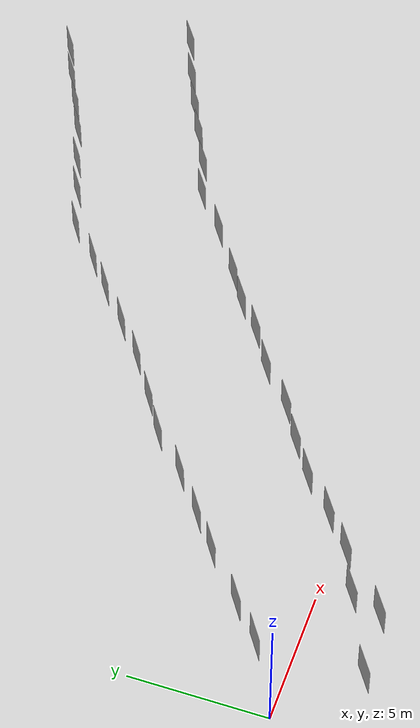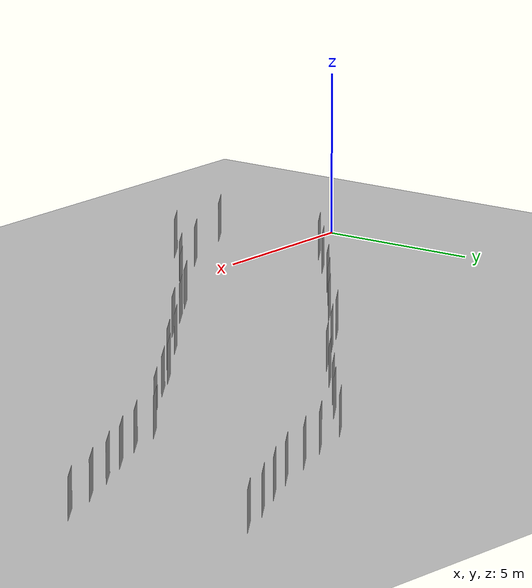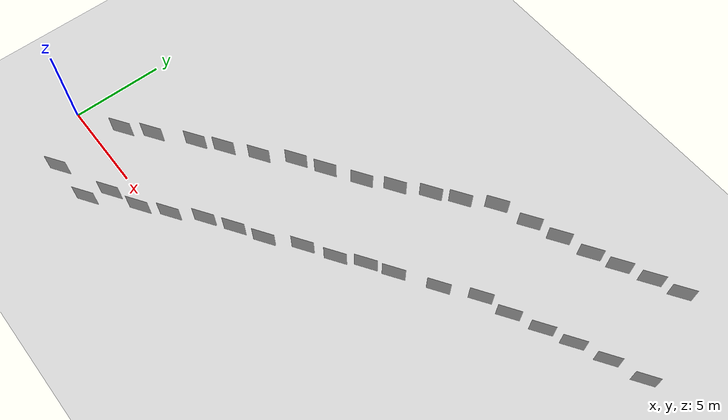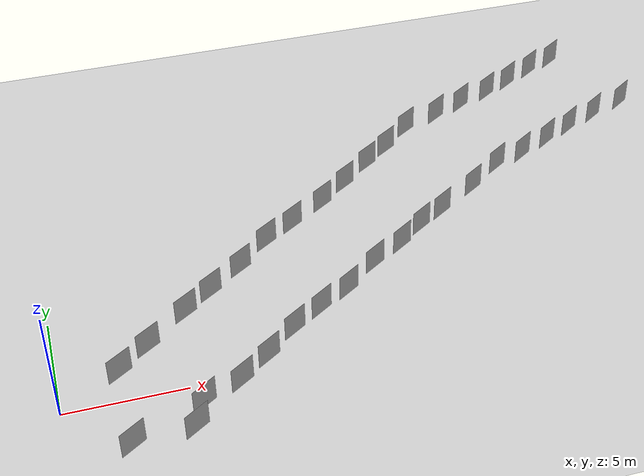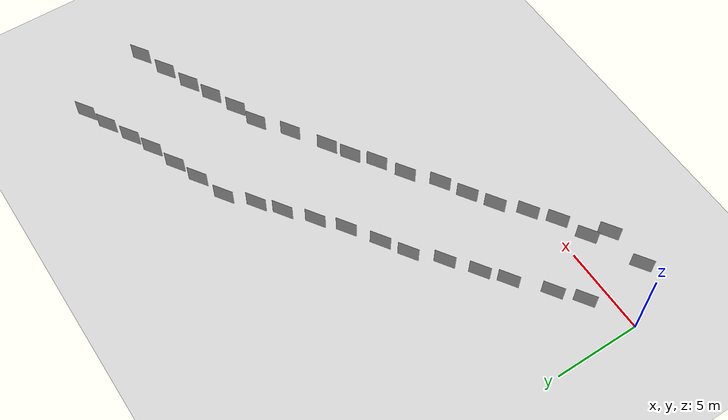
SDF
<sdf version="1.6">
 <world name="default">
  <light name="sun" type="directional">
   <pose>0 0 10 0 -0 0</pose>
   <diffuse>0.8 0.8 0.8 1</diffuse>
   <specular>0.1 0.1 0.1 1</specular>
   <attenuation>
    <range>1000</range>
    <constant>0.9</constant>
    <linear>0.01</linear>
    <quadratic>0.001</quadratic>
   </attenuation>
   <direction>-0.5 0.5 -1</direction>
  </light>
  <model name="ground_plane">
   <static>1</static>
   <link name="link">
    <collision name="collision">
     <geometry><plane><normal>0 0 1</normal><size>100 100</size></plane></geometry>
     <surface><friction><ode><mu>100</mu><mu2>50</mu2></ode></friction></surface>
    </collision>
    <visual name="visual">
     <cast_shadows>0</cast_shadows>
     <geometry><plane><normal>0 0 1</normal><size>100 100</size></plane></geometry>
     <material>
      <script><uri>file://media/materials/scripts/gazebo.material</uri><name>Gazebo/Grey</name></script>
     </material>
    </visual>
   </link>
  </model>
  <gravity>0 0 -9.8</gravity>
  <magnetic_field>6e-06 2.3e-05 -4.2e-05</magnetic_field>
  <atmosphere type="adiabatic"/>
  <physics name="default_physics" default="0" type="ode">
   <max_step_size>0.001</max_step_size>
   <real_time_factor>1</real_time_factor>
   <real_time_update_rate>1000</real_time_update_rate>
  </physics>
  <scene><ambient>0.4 0.4 0.4 1</ambient><background>0.7 0.7 0.7 1</background><shadows>1</shadows></scene>
  <spherical_coordinates>
   <surface_model>EARTH_WGS84</surface_model>
   <latitude_deg>0</latitude_deg>
   <longitude_deg>0</longitude_deg>
   <elevation>0</elevation>
   <heading_deg>0</heading_deg>
  </spherical_coordinates>
  <model name="nist_maze_wall_120">
   <static>1</static>
   <link name="nist_maze_wall_120_link">
    <collision name="collision">
     <geometry>
      <mesh><uri>model://nist_maze_wall_120/meshes/nist_maze_wall_120.dae</uri><scale>1 1 1</scale></mesh>
     </geometry>
    </collision>
    <visual name="visual">
     <geometry>
      <mesh><uri>model://nist_maze_wall_120/meshes/nist_maze_wall_120.dae</uri><scale>1 1 1</scale></mesh>
     </geometry>
    </visual>
   </link>
   <pose>2.80537 -2.9392 0 0 -0 0.587131</pose>
  </model>
  <model name="nist_maze_wall_120_clone">
   <static>1</static>
   <link name="nist_maze_wall_120_link">
    <collision name="collision">
     <geometry>
      <mesh><uri>model://nist_maze_wall_120/meshes/nist_maze_wall_120.dae</uri><scale>1 1 1</scale></mesh>
     </geometry>
    </collision>
    <visual name="visual">
     <geometry>
      <mesh><uri>model://nist_maze_wall_120/meshes/nist_maze_wall_120.dae</uri><scale>1 1 1</scale></mesh>
     </geometry>
    </visual>
   </link>
   <pose>5.24252 -2.7469 0 0 -0 0.587131</pose>
  </model>
  <model name="nist_maze_wall_120_clone_0">
   <static>1</static>
   <link name="nist_maze_wall_120_link">
    <collision name="collision">
     <geometry>
      <mesh><uri>model://nist_maze_wall_120/meshes/nist_maze_wall_120.dae</uri><scale>1 1 1</scale></mesh>
     </geometry>
    </collision>
    <visual name="visual">
     <geometry>
      <mesh><uri>model://nist_maze_wall_120/meshes/nist_maze_wall_120.dae</uri><scale>1 1 1</scale></mesh>
     </geometry>
    </visual>
   </link>
   <pose>5.72932 -1.6127 0 0 -0 0.587131</pose>
  </model>
  <model name="nist_maze_wall_120_clone_1">
   <static>1</static>
   <link name="nist_maze_wall_120_link">
    <collision name="collision">
     <geometry>
      <mesh><uri>model://nist_maze_wall_120/meshes/nist_maze_wall_120.dae</uri><scale>1 1 1</scale></mesh>
     </geometry>
    </collision>
    <visual name="visual">
     <geometry>
      <mesh><uri>model://nist_maze_wall_120/meshes/nist_maze_wall_120.dae</uri><scale>1 1 1</scale></mesh>
     </geometry>
    </visual>
   </link>
   <pose>7.36031 -0.90932 0 0 -0 0.587131</pose>
  </model>
  <model name="nist_maze_wall_120_clone_2">
   <static>1</static>
   <link name="nist_maze_wall_120_link">
    <collision name="collision">
     <geometry>
      <mesh><uri>model://nist_maze_wall_120/meshes/nist_maze_wall_120.dae</uri><scale>1 1 1</scale></mesh>
     </geometry>
    </collision>
    <visual name="visual">
     <geometry>
      <mesh><uri>model://nist_maze_wall_120/meshes/nist_maze_wall_120.dae</uri><scale>1 1 1</scale></mesh>
     </geometry>
    </visual>
   </link>
   <pose>8.6524 0.106018 0 0 -0 0.587131</pose>
  </model>
  <model name="nist_maze_wall_120_clone_3">
   <static>1</static>
   <link name="nist_maze_wall_120_link">
    <collision name="collision">
     <geometry>
      <mesh><uri>model://nist_maze_wall_120/meshes/nist_maze_wall_120.dae</uri><scale>1 1 1</scale></mesh>
     </geometry>
    </collision>
    <visual name="visual">
     <geometry>
      <mesh><uri>model://nist_maze_wall_120/meshes/nist_maze_wall_120.dae</uri><scale>1 1 1</scale></mesh>
     </geometry>
    </visual>
   </link>
   <pose>9.99961 1.31472 0 0 -0 0.587131</pose>
  </model>
  <model name="nist_maze_wall_120_clone_4">
   <static>1</static>
   <link name="nist_maze_wall_120_link">
    <collision name="collision">
     <geometry>
      <mesh><uri>model://nist_maze_wall_120/meshes/nist_maze_wall_120.dae</uri><scale>1 1 1</scale></mesh>
     </geometry>
    </collision>
    <visual name="visual">
     <geometry>
      <mesh><uri>model://nist_maze_wall_120/meshes/nist_maze_wall_120.dae</uri><scale>1 1 1</scale></mesh>
     </geometry>
    </visual>
   </link>
   <pose>11.347 2.19095 0 0 -0 0.587131</pose>
  </model>
  <model name="nist_maze_wall_120_clone_5">
   <static>1</static>
   <link name="nist_maze_wall_120_link">
    <collision name="collision">
     <geometry>
      <mesh><uri>model://nist_maze_wall_120/meshes/nist_maze_wall_120.dae</uri><scale>1 1 1</scale></mesh>
     </geometry>
    </collision>
    <visual name="visual">
     <geometry>
      <mesh><uri>model://nist_maze_wall_120/meshes/nist_maze_wall_120.dae</uri><scale>1 1 1</scale></mesh>
     </geometry>
    </visual>
   </link>
   <pose>12.7499 3.00274 0 0 -0 0.587131</pose>
  </model>
  <model name="nist_maze_wall_120_clone_6">
   <static>1</static>
   <link name="nist_maze_wall_120_link">
    <collision name="collision">
     <geometry>
      <mesh><uri>model://nist_maze_wall_120/meshes/nist_maze_wall_120.dae</uri><scale>1 1 1</scale></mesh>
     </geometry>
    </collision>
    <visual name="visual">
     <geometry>
      <mesh><uri>model://nist_maze_wall_120/meshes/nist_maze_wall_120.dae</uri><scale>1 1 1</scale></mesh>
     </geometry>
    </visual>
   </link>
   <pose>14.276 4.27203 0 0 -0 0.587131</pose>
  </model>
  <model name="nist_maze_wall_120_clone_7">
   <static>1</static>
   <link name="nist_maze_wall_120_link">
    <collision name="collision">
     <geometry>
      <mesh><uri>model://nist_maze_wall_120/meshes/nist_maze_wall_120.dae</uri><scale>1 1 1</scale></mesh>
     </geometry>
    </collision>
    <visual name="visual">
     <geometry>
      <mesh><uri>model://nist_maze_wall_120/meshes/nist_maze_wall_120.dae</uri><scale>1 1 1</scale></mesh>
     </geometry>
    </visual>
   </link>
   <pose>2.8216 0.871889 0 0 -0 0.587131</pose>
  </model>
  <model name="nist_maze_wall_120_clone_8">
   <static>1</static>
   <link name="nist_maze_wall_120_link">
    <collision name="collision">
     <geometry>
      <mesh><uri>model://nist_maze_wall_120/meshes/nist_maze_wall_120.dae</uri><scale>1 1 1</scale></mesh>
     </geometry>
    </collision>
    <visual name="visual">
     <geometry>
      <mesh><uri>model://nist_maze_wall_120/meshes/nist_maze_wall_120.dae</uri><scale>1 1 1</scale></mesh>
     </geometry>
    </visual>
   </link>
   <pose>4.11145 1.97306 0 0 -0 0.587131</pose>
  </model>
  <model name="nist_maze_wall_120_clone_9">
   <static>1</static>
   <link name="nist_maze_wall_120_link">
    <collision name="collision">
     <geometry>
      <mesh><uri>model://nist_maze_wall_120/meshes/nist_maze_wall_120.dae</uri><scale>1 1 1</scale></mesh>
     </geometry>
    </collision>
    <visual name="visual">
     <geometry>
      <mesh><uri>model://nist_maze_wall_120/meshes/nist_maze_wall_120.dae</uri><scale>1 1 1</scale></mesh>
     </geometry>
    </visual>
   </link>
   <pose>5.90118 3.48705 0 0 -0 0.587131</pose>
  </model>
  <model name="nist_maze_wall_120_clone_10">
   <static>1</static>
   <link name="nist_maze_wall_120_link">
    <collision name="collision">
     <geometry>
      <mesh><uri>model://nist_maze_wall_120/meshes/nist_maze_wall_120.dae</uri><scale>1 1 1</scale></mesh>
     </geometry>
    </collision>
    <visual name="visual">
     <geometry>
      <mesh><uri>model://nist_maze_wall_120/meshes/nist_maze_wall_120.dae</uri><scale>1 1 1</scale></mesh>
     </geometry>
    </visual>
   </link>
   <pose>7.1362 4.44564 0 0 -0 0.587131</pose>
  </model>
  <model name="nist_maze_wall_120_clone_11">
   <static>1</static>
   <link name="nist_maze_wall_120_link">
    <collision name="collision">
     <geometry>
      <mesh><uri>model://nist_maze_wall_120/meshes/nist_maze_wall_120.dae</uri><scale>1 1 1</scale></mesh>
     </geometry>
    </collision>
    <visual name="visual">
     <geometry>
      <mesh><uri>model://nist_maze_wall_120/meshes/nist_maze_wall_120.dae</uri><scale>1 1 1</scale></mesh>
     </geometry>
    </visual>
   </link>
   <pose>8.6582 5.60676 0 0 -0 0.587131</pose>
  </model>
  <model name="nist_maze_wall_120_clone_12">
   <static>1</static>
   <link name="nist_maze_wall_120_link">
    <collision name="collision">
     <geometry>
      <mesh><uri>model://nist_maze_wall_120/meshes/nist_maze_wall_120.dae</uri><scale>1 1 1</scale></mesh>
     </geometry>
    </collision>
    <visual name="visual">
     <geometry>
      <mesh><uri>model://nist_maze_wall_120/meshes/nist_maze_wall_120.dae</uri><scale>1 1 1</scale></mesh>
     </geometry>
    </visual>
   </link>
   <pose>10.0923 6.95221 0 0 -0 0.587131</pose>
  </model>
  <model name="nist_maze_wall_120_clone_13">
   <static>1</static>
   <link name="nist_maze_wall_120_link">
    <collision name="collision">
     <geometry>
      <mesh><uri>model://nist_maze_wall_120/meshes/nist_maze_wall_120.dae</uri><scale>1 1 1</scale></mesh>
     </geometry>
    </collision>
    <visual name="visual">
     <geometry>
      <mesh><uri>model://nist_maze_wall_120/meshes/nist_maze_wall_120.dae</uri><scale>1 1 1</scale></mesh>
     </geometry>
    </visual>
   </link>
   <pose>11.4725 7.80155 0 0 -0 0.587131</pose>
  </model>
  <model name="nist_maze_wall_120_clone_14">
   <static>1</static>
   <link name="nist_maze_wall_120_link">
    <collision name="collision">
     <geometry>
      <mesh><uri>model://nist_maze_wall_120/meshes/nist_maze_wall_120.dae</uri><scale>1 1 1</scale></mesh>
     </geometry>
    </collision>
    <visual name="visual">
     <geometry>
      <mesh><uri>model://nist_maze_wall_120/meshes/nist_maze_wall_120.dae</uri><scale>1 1 1</scale></mesh>
     </geometry>
    </visual>
   </link>
   <pose>13.1389 8.88084 0 0 -0 0.587131</pose>
  </model>
  <model name="nist_maze_wall_120_clone_15">
   <static>1</static>
   <link name="nist_maze_wall_120_link">
    <collision name="collision">
     <geometry>
      <mesh><uri>model://nist_maze_wall_120/meshes/nist_maze_wall_120.dae</uri><scale>1 1 1</scale></mesh>
     </geometry>
    </collision>
    <visual name="visual">
     <geometry>
      <mesh><uri>model://nist_maze_wall_120/meshes/nist_maze_wall_120.dae</uri><scale>1 1 1</scale></mesh>
     </geometry>
    </visual>
   </link>
   <pose>14.4968 9.98221 0 0 -0 0.587131</pose>
  </model>
  <model name="nist_maze_wall_120_clone_16">
   <static>1</static>
   <link name="nist_maze_wall_120_link">
    <collision name="collision">
     <geometry>
      <mesh><uri>model://nist_maze_wall_120/meshes/nist_maze_wall_120.dae</uri><scale>1 1 1</scale></mesh>
     </geometry>
    </collision>
    <visual name="visual">
     <geometry>
      <mesh><uri>model://nist_maze_wall_120/meshes/nist_maze_wall_120.dae</uri><scale>1 1 1</scale></mesh>
     </geometry>
    </visual>
   </link>
   <pose>15.9233 11.169 0 0 -0 0.587131</pose>
  </model>
  <model name="nist_maze_wall_120_clone_17">
   <static>1</static>
   <link name="nist_maze_wall_120_link">
    <collision name="collision">
     <geometry>
      <mesh><uri>model://nist_maze_wall_120/meshes/nist_maze_wall_120.dae</uri><scale>1 1 1</scale></mesh>
     </geometry>
    </collision>
    <visual name="visual">
     <geometry>
      <mesh><uri>model://nist_maze_wall_120/meshes/nist_maze_wall_120.dae</uri><scale>1 1 1</scale></mesh>
     </geometry>
    </visual>
   </link>
   <pose>17.1281 12.1095 0 0 -0 0.587131</pose>
  </model>
  <model name="nist_maze_wall_120_clone_18">
   <static>1</static>
   <link name="nist_maze_wall_120_link">
    <collision name="collision">
     <geometry>
      <mesh><uri>model://nist_maze_wall_120/meshes/nist_maze_wall_120.dae</uri><scale>1 1 1</scale></mesh>
     </geometry>
    </collision>
    <visual name="visual">
     <geometry>
      <mesh><uri>model://nist_maze_wall_120/meshes/nist_maze_wall_120.dae</uri><scale>1 1 1</scale></mesh>
     </geometry>
    </visual>
   </link>
   <pose>18.5139 13.3457 0 0 -0 0.587131</pose>
  </model>
  <model name="nist_maze_wall_120_clone_19">
   <static>1</static>
   <link name="nist_maze_wall_120_link">
    <collision name="collision">
     <geometry>
      <mesh><uri>model://nist_maze_wall_120/meshes/nist_maze_wall_120.dae</uri><scale>1 1 1</scale></mesh>
     </geometry>
    </collision>
    <visual name="visual">
     <geometry>
      <mesh><uri>model://nist_maze_wall_120/meshes/nist_maze_wall_120.dae</uri><scale>1 1 1</scale></mesh>
     </geometry>
    </visual>
   </link>
   <pose>15.7593 5.16058 0 0 -0 0.587131</pose>
  </model>
  <model name="nist_maze_wall_120_clone_20">
   <static>1</static>
   <link name="nist_maze_wall_120_link">
    <collision name="collision">
     <geometry>
      <mesh><uri>model://nist_maze_wall_120/meshes/nist_maze_wall_120.dae</uri><scale>1 1 1</scale></mesh>
     </geometry>
    </collision>
    <visual name="visual">
     <geometry>
      <mesh><uri>model://nist_maze_wall_120/meshes/nist_maze_wall_120.dae</uri><scale>1 1 1</scale></mesh>
     </geometry>
    </visual>
   </link>
   <pose>16.97 6.12544 0 0 -0 0.587131</pose>
  </model>
  <model name="nist_maze_wall_120_clone_21">
   <static>1</static>
   <link name="nist_maze_wall_120_link">
    <collision name="collision">
     <geometry>
      <mesh><uri>model://nist_maze_wall_120/meshes/nist_maze_wall_120.dae</uri><scale>1 1 1</scale></mesh>
     </geometry>
    </collision>
    <visual name="visual">
     <geometry>
      <mesh><uri>model://nist_maze_wall_120/meshes/nist_maze_wall_120.dae</uri><scale>1 1 1</scale></mesh>
     </geometry>
    </visual>
   </link>
   <pose>18.1995 6.87545 0 0 -0 0.587131</pose>
  </model>
  <model name="nist_maze_wall_120_clone_22">
   <static>1</static>
   <link name="nist_maze_wall_120_link">
    <collision name="collision">
     <geometry>
      <mesh><uri>model://nist_maze_wall_120/meshes/nist_maze_wall_120.dae</uri><scale>1 1 1</scale></mesh>
     </geometry>
    </collision>
    <visual name="visual">
     <geometry>
      <mesh><uri>model://nist_maze_wall_120/meshes/nist_maze_wall_120.dae</uri><scale>1 1 1</scale></mesh>
     </geometry>
    </visual>
   </link>
   <pose>20.1158 8.10637 0 0 -0 0.587131</pose>
  </model>
  <model name="nist_maze_wall_120_clone_23">
   <static>1</static>
   <link name="nist_maze_wall_120_link">
    <collision name="collision">
     <geometry>
      <mesh><uri>model://nist_maze_wall_120/meshes/nist_maze_wall_120.dae</uri><scale>1 1 1</scale></mesh>
     </geometry>
    </collision>
    <visual name="visual">
     <geometry>
      <mesh><uri>model://nist_maze_wall_120/meshes/nist_maze_wall_120.dae</uri><scale>1 1 1</scale></mesh>
     </geometry>
    </visual>
   </link>
   <pose>20.2723 13.9693 0 0 -0 0.587131</pose>
  </model>
  <model name="nist_maze_wall_120_clone_24">
   <static>1</static>
   <link name="nist_maze_wall_120_link">
    <collision name="collision">
     <geometry>
      <mesh><uri>model://nist_maze_wall_120/meshes/nist_maze_wall_120.dae</uri><scale>1 1 1</scale></mesh>
     </geometry>
    </collision>
    <visual name="visual">
     <geometry>
      <mesh><uri>model://nist_maze_wall_120/meshes/nist_maze_wall_120.dae</uri><scale>1 1 1</scale></mesh>
     </geometry>
    </visual>
   </link>
   <pose>21.7841 14.561 0 0 -0 0.587131</pose>
  </model>
  <model name="nist_maze_wall_120_clone_25">
   <static>1</static>
   <link name="nist_maze_wall_120_link">
    <collision name="collision">
     <geometry>
      <mesh><uri>model://nist_maze_wall_120/meshes/nist_maze_wall_120.dae</uri><scale>1 1 1</scale></mesh>
     </geometry>
    </collision>
    <visual name="visual">
     <geometry>
      <mesh><uri>model://nist_maze_wall_120/meshes/nist_maze_wall_120.dae</uri><scale>1 1 1</scale></mesh>
     </geometry>
    </visual>
   </link>
   <pose>23.3777 15.1428 0 0 -0 0.587131</pose>
  </model>
  <model name="nist_maze_wall_120_clone_26">
   <static>1</static>
   <link name="nist_maze_wall_120_link">
    <collision name="collision">
     <geometry>
      <mesh><uri>model://nist_maze_wall_120/meshes/nist_maze_wall_120.dae</uri><scale>1 1 1</scale></mesh>
     </geometry>
    </collision>
    <visual name="visual">
     <geometry>
      <mesh><uri>model://nist_maze_wall_120/meshes/nist_maze_wall_120.dae</uri><scale>1 1 1</scale></mesh>
     </geometry>
    </visual>
   </link>
   <pose>24.7474 15.7781 0 0 -0 0.587131</pose>
  </model>
  <model name="nist_maze_wall_120_clone_27">
   <static>1</static>
   <link name="nist_maze_wall_120_link">
    <collision name="collision">
     <geometry>
      <mesh><uri>model://nist_maze_wall_120/meshes/nist_maze_wall_120.dae</uri><scale>1 1 1</scale></mesh>
     </geometry>
    </collision>
    <visual name="visual">
     <geometry>
      <mesh><uri>model://nist_maze_wall_120/meshes/nist_maze_wall_120.dae</uri><scale>1 1 1</scale></mesh>
     </geometry>
    </visual>
   </link>
   <pose>26.2046 16.497 0 0 -0 0.587131</pose>
  </model>
  <model name="nist_maze_wall_120_clone_28">
   <static>1</static>
   <link name="nist_maze_wall_120_link">
    <collision name="collision">
     <geometry>
      <mesh><uri>model://nist_maze_wall_120/meshes/nist_maze_wall_120.dae</uri><scale>1 1 1</scale></mesh>
     </geometry>
    </collision>
    <visual name="visual">
     <geometry>
      <mesh><uri>model://nist_maze_wall_120/meshes/nist_maze_wall_120.dae</uri><scale>1 1 1</scale></mesh>
     </geometry>
    </visual>
   </link>
   <pose>27.6211 17.1018 0 0 -0 0.587131</pose>
  </model>
  <model name="nist_maze_wall_120_clone_29">
   <static>1</static>
   <link name="nist_maze_wall_120_link">
    <collision name="collision">
     <geometry>
      <mesh><uri>model://nist_maze_wall_120/meshes/nist_maze_wall_120.dae</uri><scale>1 1 1</scale></mesh>
     </geometry>
    </collision>
    <visual name="visual">
     <geometry>
      <mesh><uri>model://nist_maze_wall_120/meshes/nist_maze_wall_120.dae</uri><scale>1 1 1</scale></mesh>
     </geometry>
    </visual>
   </link>
   <pose>21.7663 9.36882 0 0 -0 0.587131</pose>
  </model>
  <model name="nist_maze_wall_120_clone_30">
   <static>1</static>
   <link name="nist_maze_wall_120_link">
    <collision name="collision">
     <geometry>
      <mesh><uri>model://nist_maze_wall_120/meshes/nist_maze_wall_120.dae</uri><scale>1 1 1</scale></mesh>
     </geometry>
    </collision>
    <visual name="visual">
     <geometry>
      <mesh><uri>model://nist_maze_wall_120/meshes/nist_maze_wall_120.dae</uri><scale>1 1 1</scale></mesh>
     </geometry>
    </visual>
   </link>
   <pose>23.2327 9.84201 0 0 -0 0.587131</pose>
  </model>
  <model name="nist_maze_wall_120_clone_31">
   <static>1</static>
   <link name="nist_maze_wall_120_link">
    <collision name="collision">
     <geometry>
      <mesh><uri>model://nist_maze_wall_120/meshes/nist_maze_wall_120.dae</uri><scale>1 1 1</scale></mesh>
     </geometry>
    </collision>
    <visual name="visual">
     <geometry>
      <mesh><uri>model://nist_maze_wall_120/meshes/nist_maze_wall_120.dae</uri><scale>1 1 1</scale></mesh>
     </geometry>
    </visual>
   </link>
   <pose>24.7825 10.5613 0 0 -0 0.587131</pose>
  </model>
  <model name="nist_maze_wall_120_clone_32">
   <static>1</static>
   <link name="nist_maze_wall_120_link">
    <collision name="collision">
     <geometry>
      <mesh><uri>model://nist_maze_wall_120/meshes/nist_maze_wall_120.dae</uri><scale>1 1 1</scale></mesh>
     </geometry>
    </collision>
    <visual name="visual">
     <geometry>
      <mesh><uri>model://nist_maze_wall_120/meshes/nist_maze_wall_120.dae</uri><scale>1 1 1</scale></mesh>
     </geometry>
    </visual>
   </link>
   <pose>26.2041 11.2256 0 0 -0 0.587131</pose>
  </model>
  <model name="nist_maze_wall_120_clone_33">
   <static>1</static>
   <link name="nist_maze_wall_120_link">
    <collision name="collision">
     <geometry>
      <mesh><uri>model://nist_maze_wall_120/meshes/nist_maze_wall_120.dae</uri><scale>1 1 1</scale></mesh>
     </geometry>
    </collision>
    <visual name="visual">
     <geometry>
      <mesh><uri>model://nist_maze_wall_120/meshes/nist_maze_wall_120.dae</uri><scale>1 1 1</scale></mesh>
     </geometry>
    </visual>
   </link>
   <pose>27.7912 11.9102 0 0 -0 0.587131</pose>
  </model>
  <model name="nist_maze_wall_120_clone_34">
   <static>1</static>
   <link name="nist_maze_wall_120_link">
    <collision name="collision">
     <geometry>
      <mesh><uri>model://nist_maze_wall_120/meshes/nist_maze_wall_120.dae</uri><scale>1 1 1</scale></mesh>
     </geometry>
    </collision>
    <visual name="visual">
     <geometry>
      <mesh><uri>model://nist_maze_wall_120/meshes/nist_maze_wall_120.dae</uri><scale>1 1 1</scale></mesh>
     </geometry>
    </visual>
   </link>
   <pose>29.5415 12.5784 0 0 -0 0.587131</pose>
  </model>
 </world>
</sdf>
